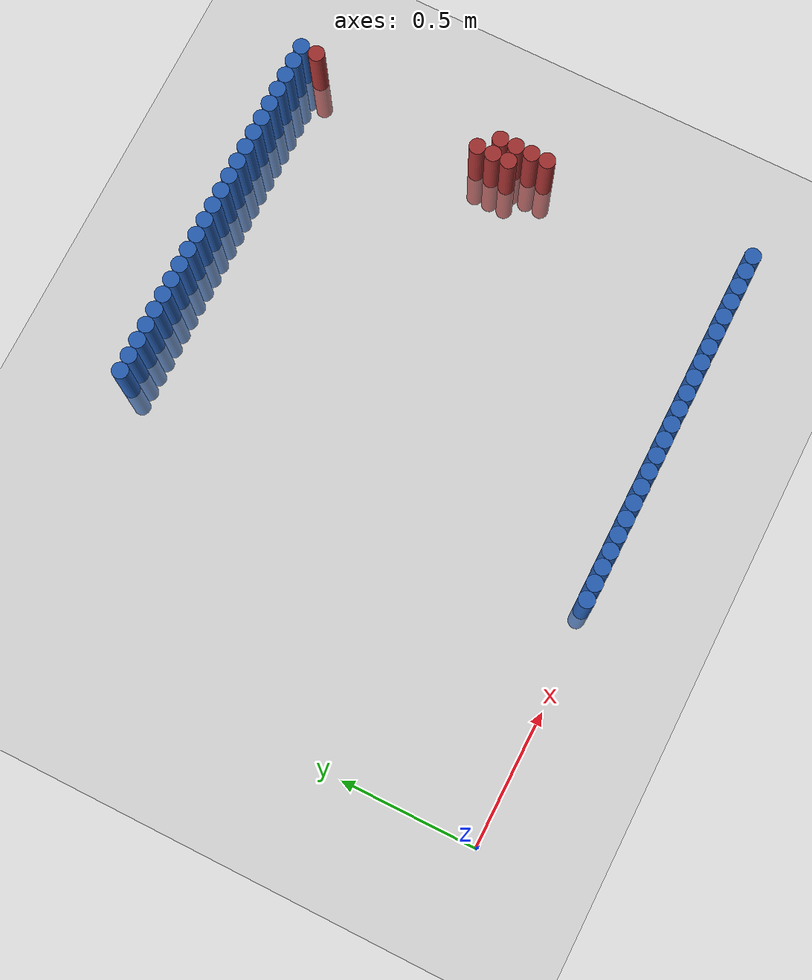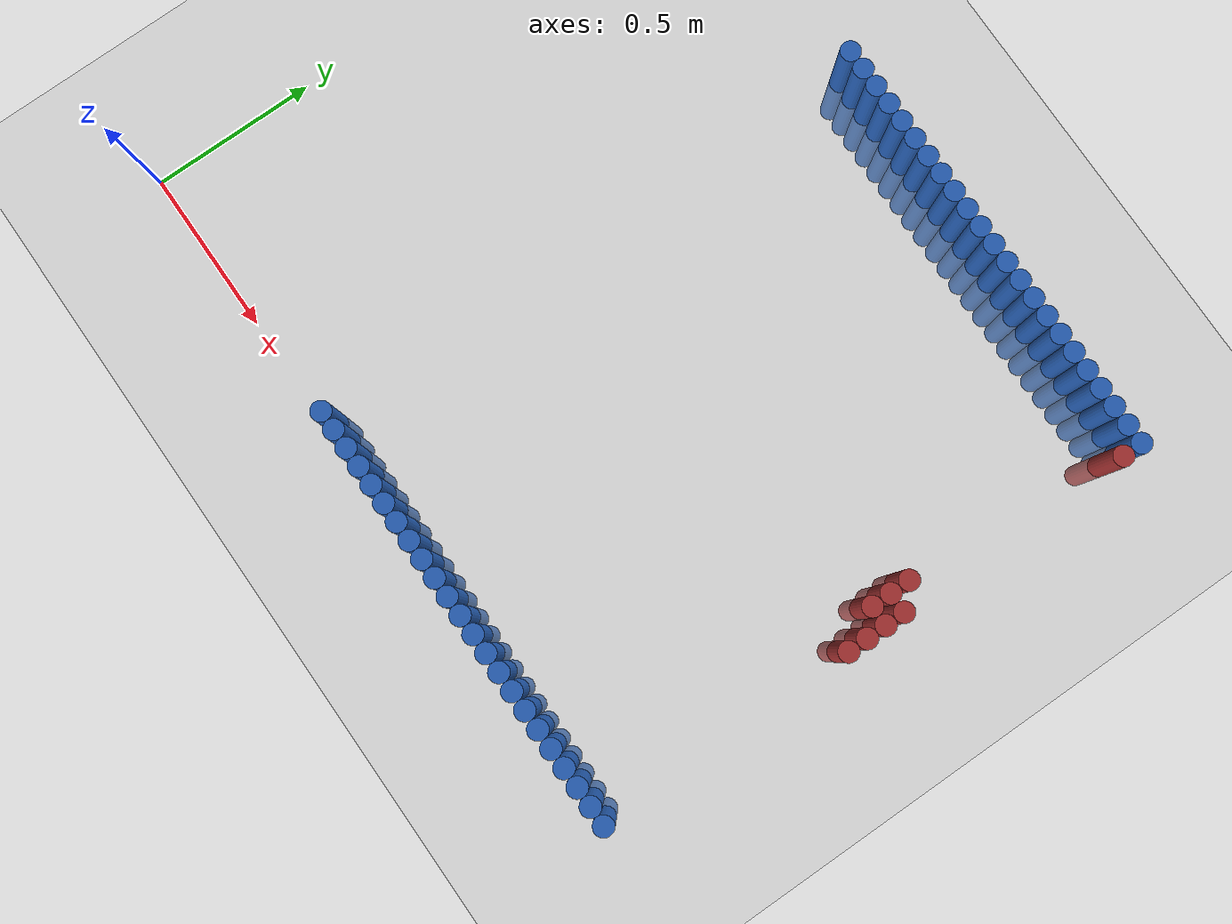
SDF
<sdf version="1.6">
 <world name="default">
  <model name="ground_plane">
   <static>1</static>
   <link name="link">
    <collision name="collision">
     <geometry><plane><normal>0 0 1</normal><size>100 100</size></plane></geometry>
     <surface><friction><ode><mu>100</mu><mu2>50</mu2></ode></friction></surface>
    </collision>
    <visual name="visual">
     <cast_shadows>0</cast_shadows>
     <geometry><plane><normal>0 0 1</normal><size>100 100</size></plane></geometry>
     <material>
      <script><uri>file://media/materials/scripts/gazebo.material</uri><name>Gazebo/Grey</name></script>
     </material>
    </visual>
   </link>
  </model>
  <model name="unit_cylinder_55">
   <static>1</static>
   <pose>0.870000 0.030000 0.000000 0.000000 0.000000 0.000000</pose>
   <link name="link">
    <inertial>
     <mass>1</mass>
     <inertia><ixx>0.145833</ixx><ixy>0</ixy><ixz>0</ixz><iyy>0.145833</iyy><iyz>0</iyz><izz>0.125</izz></inertia>
    </inertial>
    <collision name="collision">
     <geometry><cylinder><radius>0.030000</radius><length>0.5</length></cylinder></geometry>
    </collision>
    <visual name="visual">
     <geometry><cylinder><radius>0.030000</radius><length>0.5</length></cylinder></geometry>
     <material>
      <ambient>0.152000 0.379000 0.720000 1</ambient>
      <diffuse>0.152000 0.379000 0.720000 1</diffuse>
     </material>
     <material>
      <script><name>Gazebo/Grey</name><uri>file://media/materials/scripts/gazebo.material</uri></script>
     </material>
    </visual>
   </link>
  </model>
  <model name="unit_cylinder_56">
   <static>1</static>
   <pose>0.870000 1.770000 0.000000 0.000000 0.000000 0.000000</pose>
   <link name="link">
    <inertial>
     <mass>1</mass>
     <inertia><ixx>0.145833</ixx><ixy>0</ixy><ixz>0</ixz><iyy>0.145833</iyy><iyz>0</iyz><izz>0.125</izz></inertia>
    </inertial>
    <collision name="collision">
     <geometry><cylinder><radius>0.030000</radius><length>0.5</length></cylinder></geometry>
    </collision>
    <visual name="visual">
     <geometry><cylinder><radius>0.030000</radius><length>0.5</length></cylinder></geometry>
     <material>
      <ambient>0.152000 0.379000 0.720000 1</ambient>
      <diffuse>0.152000 0.379000 0.720000 1</diffuse>
     </material>
     <material>
      <script><name>Gazebo/Grey</name><uri>file://media/materials/scripts/gazebo.material</uri></script>
     </material>
    </visual>
   </link>
  </model>
  <model name="unit_cylinder_57">
   <static>1</static>
   <pose>0.930000 0.030000 0.000000 0.000000 0.000000 0.000000</pose>
   <link name="link">
    <inertial>
     <mass>1</mass>
     <inertia><ixx>0.145833</ixx><ixy>0</ixy><ixz>0</ixz><iyy>0.145833</iyy><iyz>0</iyz><izz>0.125</izz></inertia>
    </inertial>
    <collision name="collision">
     <geometry><cylinder><radius>0.030000</radius><length>0.5</length></cylinder></geometry>
    </collision>
    <visual name="visual">
     <geometry><cylinder><radius>0.030000</radius><length>0.5</length></cylinder></geometry>
     <material>
      <ambient>0.152000 0.379000 0.720000 1</ambient>
      <diffuse>0.152000 0.379000 0.720000 1</diffuse>
     </material>
     <material>
      <script><name>Gazebo/Grey</name><uri>file://media/materials/scripts/gazebo.material</uri></script>
     </material>
    </visual>
   </link>
  </model>
  <model name="unit_cylinder_58">
   <static>1</static>
   <pose>0.930000 1.770000 0.000000 0.000000 0.000000 0.000000</pose>
   <link name="link">
    <inertial>
     <mass>1</mass>
     <inertia><ixx>0.145833</ixx><ixy>0</ixy><ixz>0</ixz><iyy>0.145833</iyy><iyz>0</iyz><izz>0.125</izz></inertia>
    </inertial>
    <collision name="collision">
     <geometry><cylinder><radius>0.030000</radius><length>0.5</length></cylinder></geometry>
    </collision>
    <visual name="visual">
     <geometry><cylinder><radius>0.030000</radius><length>0.5</length></cylinder></geometry>
     <material>
      <ambient>0.152000 0.379000 0.720000 1</ambient>
      <diffuse>0.152000 0.379000 0.720000 1</diffuse>
     </material>
     <material>
      <script><name>Gazebo/Grey</name><uri>file://media/materials/scripts/gazebo.material</uri></script>
     </material>
    </visual>
   </link>
  </model>
  <model name="unit_cylinder_59">
   <static>1</static>
   <pose>0.990000 0.030000 0.000000 0.000000 0.000000 0.000000</pose>
   <link name="link">
    <inertial>
     <mass>1</mass>
     <inertia><ixx>0.145833</ixx><ixy>0</ixy><ixz>0</ixz><iyy>0.145833</iyy><iyz>0</iyz><izz>0.125</izz></inertia>
    </inertial>
    <collision name="collision">
     <geometry><cylinder><radius>0.030000</radius><length>0.5</length></cylinder></geometry>
    </collision>
    <visual name="visual">
     <geometry><cylinder><radius>0.030000</radius><length>0.5</length></cylinder></geometry>
     <material>
      <ambient>0.152000 0.379000 0.720000 1</ambient>
      <diffuse>0.152000 0.379000 0.720000 1</diffuse>
     </material>
     <material>
      <script><name>Gazebo/Grey</name><uri>file://media/materials/scripts/gazebo.material</uri></script>
     </material>
    </visual>
   </link>
  </model>
  <model name="unit_cylinder_60">
   <static>1</static>
   <pose>0.990000 1.770000 0.000000 0.000000 0.000000 0.000000</pose>
   <link name="link">
    <inertial>
     <mass>1</mass>
     <inertia><ixx>0.145833</ixx><ixy>0</ixy><ixz>0</ixz><iyy>0.145833</iyy><iyz>0</iyz><izz>0.125</izz></inertia>
    </inertial>
    <collision name="collision">
     <geometry><cylinder><radius>0.030000</radius><length>0.5</length></cylinder></geometry>
    </collision>
    <visual name="visual">
     <geometry><cylinder><radius>0.030000</radius><length>0.5</length></cylinder></geometry>
     <material>
      <ambient>0.152000 0.379000 0.720000 1</ambient>
      <diffuse>0.152000 0.379000 0.720000 1</diffuse>
     </material>
     <material>
      <script><name>Gazebo/Grey</name><uri>file://media/materials/scripts/gazebo.material</uri></script>
     </material>
    </visual>
   </link>
  </model>
  <model name="unit_cylinder_61">
   <static>1</static>
   <pose>1.050000 0.030000 0.000000 0.000000 0.000000 0.000000</pose>
   <link name="link">
    <inertial>
     <mass>1</mass>
     <inertia><ixx>0.145833</ixx><ixy>0</ixy><ixz>0</ixz><iyy>0.145833</iyy><iyz>0</iyz><izz>0.125</izz></inertia>
    </inertial>
    <collision name="collision">
     <geometry><cylinder><radius>0.030000</radius><length>0.5</length></cylinder></geometry>
    </collision>
    <visual name="visual">
     <geometry><cylinder><radius>0.030000</radius><length>0.5</length></cylinder></geometry>
     <material>
      <ambient>0.152000 0.379000 0.720000 1</ambient>
      <diffuse>0.152000 0.379000 0.720000 1</diffuse>
     </material>
     <material>
      <script><name>Gazebo/Grey</name><uri>file://media/materials/scripts/gazebo.material</uri></script>
     </material>
    </visual>
   </link>
  </model>
  <model name="unit_cylinder_62">
   <static>1</static>
   <pose>1.050000 1.770000 0.000000 0.000000 0.000000 0.000000</pose>
   <link name="link">
    <inertial>
     <mass>1</mass>
     <inertia><ixx>0.145833</ixx><ixy>0</ixy><ixz>0</ixz><iyy>0.145833</iyy><iyz>0</iyz><izz>0.125</izz></inertia>
    </inertial>
    <collision name="collision">
     <geometry><cylinder><radius>0.030000</radius><length>0.5</length></cylinder></geometry>
    </collision>
    <visual name="visual">
     <geometry><cylinder><radius>0.030000</radius><length>0.5</length></cylinder></geometry>
     <material>
      <ambient>0.152000 0.379000 0.720000 1</ambient>
      <diffuse>0.152000 0.379000 0.720000 1</diffuse>
     </material>
     <material>
      <script><name>Gazebo/Grey</name><uri>file://media/materials/scripts/gazebo.material</uri></script>
     </material>
    </visual>
   </link>
  </model>
  <model name="unit_cylinder_63">
   <static>1</static>
   <pose>1.110000 0.030000 0.000000 0.000000 0.000000 0.000000</pose>
   <link name="link">
    <inertial>
     <mass>1</mass>
     <inertia><ixx>0.145833</ixx><ixy>0</ixy><ixz>0</ixz><iyy>0.145833</iyy><iyz>0</iyz><izz>0.125</izz></inertia>
    </inertial>
    <collision name="collision">
     <geometry><cylinder><radius>0.030000</radius><length>0.5</length></cylinder></geometry>
    </collision>
    <visual name="visual">
     <geometry><cylinder><radius>0.030000</radius><length>0.5</length></cylinder></geometry>
     <material>
      <ambient>0.152000 0.379000 0.720000 1</ambient>
      <diffuse>0.152000 0.379000 0.720000 1</diffuse>
     </material>
     <material>
      <script><name>Gazebo/Grey</name><uri>file://media/materials/scripts/gazebo.material</uri></script>
     </material>
    </visual>
   </link>
  </model>
  <model name="unit_cylinder_64">
   <static>1</static>
   <pose>1.110000 1.770000 0.000000 0.000000 0.000000 0.000000</pose>
   <link name="link">
    <inertial>
     <mass>1</mass>
     <inertia><ixx>0.145833</ixx><ixy>0</ixy><ixz>0</ixz><iyy>0.145833</iyy><iyz>0</iyz><izz>0.125</izz></inertia>
    </inertial>
    <collision name="collision">
     <geometry><cylinder><radius>0.030000</radius><length>0.5</length></cylinder></geometry>
    </collision>
    <visual name="visual">
     <geometry><cylinder><radius>0.030000</radius><length>0.5</length></cylinder></geometry>
     <material>
      <ambient>0.152000 0.379000 0.720000 1</ambient>
      <diffuse>0.152000 0.379000 0.720000 1</diffuse>
     </material>
     <material>
      <script><name>Gazebo/Grey</name><uri>file://media/materials/scripts/gazebo.material</uri></script>
     </material>
    </visual>
   </link>
  </model>
  <model name="unit_cylinder_65">
   <static>1</static>
   <pose>1.170000 0.030000 0.000000 0.000000 0.000000 0.000000</pose>
   <link name="link">
    <inertial>
     <mass>1</mass>
     <inertia><ixx>0.145833</ixx><ixy>0</ixy><ixz>0</ixz><iyy>0.145833</iyy><iyz>0</iyz><izz>0.125</izz></inertia>
    </inertial>
    <collision name="collision">
     <geometry><cylinder><radius>0.030000</radius><length>0.5</length></cylinder></geometry>
    </collision>
    <visual name="visual">
     <geometry><cylinder><radius>0.030000</radius><length>0.5</length></cylinder></geometry>
     <material>
      <ambient>0.152000 0.379000 0.720000 1</ambient>
      <diffuse>0.152000 0.379000 0.720000 1</diffuse>
     </material>
     <material>
      <script><name>Gazebo/Grey</name><uri>file://media/materials/scripts/gazebo.material</uri></script>
     </material>
    </visual>
   </link>
  </model>
  <model name="unit_cylinder_66">
   <static>1</static>
   <pose>1.170000 1.770000 0.000000 0.000000 0.000000 0.000000</pose>
   <link name="link">
    <inertial>
     <mass>1</mass>
     <inertia><ixx>0.145833</ixx><ixy>0</ixy><ixz>0</ixz><iyy>0.145833</iyy><iyz>0</iyz><izz>0.125</izz></inertia>
    </inertial>
    <collision name="collision">
     <geometry><cylinder><radius>0.030000</radius><length>0.5</length></cylinder></geometry>
    </collision>
    <visual name="visual">
     <geometry><cylinder><radius>0.030000</radius><length>0.5</length></cylinder></geometry>
     <material>
      <ambient>0.152000 0.379000 0.720000 1</ambient>
      <diffuse>0.152000 0.379000 0.720000 1</diffuse>
     </material>
     <material>
      <script><name>Gazebo/Grey</name><uri>file://media/materials/scripts/gazebo.material</uri></script>
     </material>
    </visual>
   </link>
  </model>
  <model name="unit_cylinder_67">
   <static>1</static>
   <pose>1.230000 0.030000 0.000000 0.000000 0.000000 0.000000</pose>
   <link name="link">
    <inertial>
     <mass>1</mass>
     <inertia><ixx>0.145833</ixx><ixy>0</ixy><ixz>0</ixz><iyy>0.145833</iyy><iyz>0</iyz><izz>0.125</izz></inertia>
    </inertial>
    <collision name="collision">
     <geometry><cylinder><radius>0.030000</radius><length>0.5</length></cylinder></geometry>
    </collision>
    <visual name="visual">
     <geometry><cylinder><radius>0.030000</radius><length>0.5</length></cylinder></geometry>
     <material>
      <ambient>0.152000 0.379000 0.720000 1</ambient>
      <diffuse>0.152000 0.379000 0.720000 1</diffuse>
     </material>
     <material>
      <script><name>Gazebo/Grey</name><uri>file://media/materials/scripts/gazebo.material</uri></script>
     </material>
    </visual>
   </link>
  </model>
  <model name="unit_cylinder_68">
   <static>1</static>
   <pose>1.230000 1.770000 0.000000 0.000000 0.000000 0.000000</pose>
   <link name="link">
    <inertial>
     <mass>1</mass>
     <inertia><ixx>0.145833</ixx><ixy>0</ixy><ixz>0</ixz><iyy>0.145833</iyy><iyz>0</iyz><izz>0.125</izz></inertia>
    </inertial>
    <collision name="collision">
     <geometry><cylinder><radius>0.030000</radius><length>0.5</length></cylinder></geometry>
    </collision>
    <visual name="visual">
     <geometry><cylinder><radius>0.030000</radius><length>0.5</length></cylinder></geometry>
     <material>
      <ambient>0.152000 0.379000 0.720000 1</ambient>
      <diffuse>0.152000 0.379000 0.720000 1</diffuse>
     </material>
     <material>
      <script><name>Gazebo/Grey</name><uri>file://media/materials/scripts/gazebo.material</uri></script>
     </material>
    </visual>
   </link>
  </model>
  <model name="unit_cylinder_69">
   <static>1</static>
   <pose>1.290000 0.030000 0.000000 0.000000 0.000000 0.000000</pose>
   <link name="link">
    <inertial>
     <mass>1</mass>
     <inertia><ixx>0.145833</ixx><ixy>0</ixy><ixz>0</ixz><iyy>0.145833</iyy><iyz>0</iyz><izz>0.125</izz></inertia>
    </inertial>
    <collision name="collision">
     <geometry><cylinder><radius>0.030000</radius><length>0.5</length></cylinder></geometry>
    </collision>
    <visual name="visual">
     <geometry><cylinder><radius>0.030000</radius><length>0.5</length></cylinder></geometry>
     <material>
      <ambient>0.152000 0.379000 0.720000 1</ambient>
      <diffuse>0.152000 0.379000 0.720000 1</diffuse>
     </material>
     <material>
      <script><name>Gazebo/Grey</name><uri>file://media/materials/scripts/gazebo.material</uri></script>
     </material>
    </visual>
   </link>
  </model>
  <model name="unit_cylinder_70">
   <static>1</static>
   <pose>1.290000 1.770000 0.000000 0.000000 0.000000 0.000000</pose>
   <link name="link">
    <inertial>
     <mass>1</mass>
     <inertia><ixx>0.145833</ixx><ixy>0</ixy><ixz>0</ixz><iyy>0.145833</iyy><iyz>0</iyz><izz>0.125</izz></inertia>
    </inertial>
    <collision name="collision">
     <geometry><cylinder><radius>0.030000</radius><length>0.5</length></cylinder></geometry>
    </collision>
    <visual name="visual">
     <geometry><cylinder><radius>0.030000</radius><length>0.5</length></cylinder></geometry>
     <material>
      <ambient>0.152000 0.379000 0.720000 1</ambient>
      <diffuse>0.152000 0.379000 0.720000 1</diffuse>
     </material>
     <material>
      <script><name>Gazebo/Grey</name><uri>file://media/materials/scripts/gazebo.material</uri></script>
     </material>
    </visual>
   </link>
  </model>
  <model name="unit_cylinder_71">
   <static>1</static>
   <pose>1.350000 0.030000 0.000000 0.000000 0.000000 0.000000</pose>
   <link name="link">
    <inertial>
     <mass>1</mass>
     <inertia><ixx>0.145833</ixx><ixy>0</ixy><ixz>0</ixz><iyy>0.145833</iyy><iyz>0</iyz><izz>0.125</izz></inertia>
    </inertial>
    <collision name="collision">
     <geometry><cylinder><radius>0.030000</radius><length>0.5</length></cylinder></geometry>
    </collision>
    <visual name="visual">
     <geometry><cylinder><radius>0.030000</radius><length>0.5</length></cylinder></geometry>
     <material>
      <ambient>0.152000 0.379000 0.720000 1</ambient>
      <diffuse>0.152000 0.379000 0.720000 1</diffuse>
     </material>
     <material>
      <script><name>Gazebo/Grey</name><uri>file://media/materials/scripts/gazebo.material</uri></script>
     </material>
    </visual>
   </link>
  </model>
  <model name="unit_cylinder_72">
   <static>1</static>
   <pose>1.350000 1.770000 0.000000 0.000000 0.000000 0.000000</pose>
   <link name="link">
    <inertial>
     <mass>1</mass>
     <inertia><ixx>0.145833</ixx><ixy>0</ixy><ixz>0</ixz><iyy>0.145833</iyy><iyz>0</iyz><izz>0.125</izz></inertia>
    </inertial>
    <collision name="collision">
     <geometry><cylinder><radius>0.030000</radius><length>0.5</length></cylinder></geometry>
    </collision>
    <visual name="visual">
     <geometry><cylinder><radius>0.030000</radius><length>0.5</length></cylinder></geometry>
     <material>
      <ambient>0.152000 0.379000 0.720000 1</ambient>
      <diffuse>0.152000 0.379000 0.720000 1</diffuse>
     </material>
     <material>
      <script><name>Gazebo/Grey</name><uri>file://media/materials/scripts/gazebo.material</uri></script>
     </material>
    </visual>
   </link>
  </model>
  <model name="unit_cylinder_73">
   <static>1</static>
   <pose>1.410000 0.030000 0.000000 0.000000 0.000000 0.000000</pose>
   <link name="link">
    <inertial>
     <mass>1</mass>
     <inertia><ixx>0.145833</ixx><ixy>0</ixy><ixz>0</ixz><iyy>0.145833</iyy><iyz>0</iyz><izz>0.125</izz></inertia>
    </inertial>
    <collision name="collision">
     <geometry><cylinder><radius>0.030000</radius><length>0.5</length></cylinder></geometry>
    </collision>
    <visual name="visual">
     <geometry><cylinder><radius>0.030000</radius><length>0.5</length></cylinder></geometry>
     <material>
      <ambient>0.152000 0.379000 0.720000 1</ambient>
      <diffuse>0.152000 0.379000 0.720000 1</diffuse>
     </material>
     <material>
      <script><name>Gazebo/Grey</name><uri>file://media/materials/scripts/gazebo.material</uri></script>
     </material>
    </visual>
   </link>
  </model>
  <model name="unit_cylinder_74">
   <static>1</static>
   <pose>1.410000 1.770000 0.000000 0.000000 0.000000 0.000000</pose>
   <link name="link">
    <inertial>
     <mass>1</mass>
     <inertia><ixx>0.145833</ixx><ixy>0</ixy><ixz>0</ixz><iyy>0.145833</iyy><iyz>0</iyz><izz>0.125</izz></inertia>
    </inertial>
    <collision name="collision">
     <geometry><cylinder><radius>0.030000</radius><length>0.5</length></cylinder></geometry>
    </collision>
    <visual name="visual">
     <geometry><cylinder><radius>0.030000</radius><length>0.5</length></cylinder></geometry>
     <material>
      <ambient>0.152000 0.379000 0.720000 1</ambient>
      <diffuse>0.152000 0.379000 0.720000 1</diffuse>
     </material>
     <material>
      <script><name>Gazebo/Grey</name><uri>file://media/materials/scripts/gazebo.material</uri></script>
     </material>
    </visual>
   </link>
  </model>
  <model name="unit_cylinder_75">
   <static>1</static>
   <pose>1.470000 0.030000 0.000000 0.000000 0.000000 0.000000</pose>
   <link name="link">
    <inertial>
     <mass>1</mass>
     <inertia><ixx>0.145833</ixx><ixy>0</ixy><ixz>0</ixz><iyy>0.145833</iyy><iyz>0</iyz><izz>0.125</izz></inertia>
    </inertial>
    <collision name="collision">
     <geometry><cylinder><radius>0.030000</radius><length>0.5</length></cylinder></geometry>
    </collision>
    <visual name="visual">
     <geometry><cylinder><radius>0.030000</radius><length>0.5</length></cylinder></geometry>
     <material>
      <ambient>0.152000 0.379000 0.720000 1</ambient>
      <diffuse>0.152000 0.379000 0.720000 1</diffuse>
     </material>
     <material>
      <script><name>Gazebo/Grey</name><uri>file://media/materials/scripts/gazebo.material</uri></script>
     </material>
    </visual>
   </link>
  </model>
  <model name="unit_cylinder_76">
   <static>1</static>
   <pose>1.470000 1.770000 0.000000 0.000000 0.000000 0.000000</pose>
   <link name="link">
    <inertial>
     <mass>1</mass>
     <inertia><ixx>0.145833</ixx><ixy>0</ixy><ixz>0</ixz><iyy>0.145833</iyy><iyz>0</iyz><izz>0.125</izz></inertia>
    </inertial>
    <collision name="collision">
     <geometry><cylinder><radius>0.030000</radius><length>0.5</length></cylinder></geometry>
    </collision>
    <visual name="visual">
     <geometry><cylinder><radius>0.030000</radius><length>0.5</length></cylinder></geometry>
     <material>
      <ambient>0.152000 0.379000 0.720000 1</ambient>
      <diffuse>0.152000 0.379000 0.720000 1</diffuse>
     </material>
     <material>
      <script><name>Gazebo/Grey</name><uri>file://media/materials/scripts/gazebo.material</uri></script>
     </material>
    </visual>
   </link>
  </model>
  <model name="unit_cylinder_77">
   <static>1</static>
   <pose>1.530000 0.030000 0.000000 0.000000 0.000000 0.000000</pose>
   <link name="link">
    <inertial>
     <mass>1</mass>
     <inertia><ixx>0.145833</ixx><ixy>0</ixy><ixz>0</ixz><iyy>0.145833</iyy><iyz>0</iyz><izz>0.125</izz></inertia>
    </inertial>
    <collision name="collision">
     <geometry><cylinder><radius>0.030000</radius><length>0.5</length></cylinder></geometry>
    </collision>
    <visual name="visual">
     <geometry><cylinder><radius>0.030000</radius><length>0.5</length></cylinder></geometry>
     <material>
      <ambient>0.152000 0.379000 0.720000 1</ambient>
      <diffuse>0.152000 0.379000 0.720000 1</diffuse>
     </material>
     <material>
      <script><name>Gazebo/Grey</name><uri>file://media/materials/scripts/gazebo.material</uri></script>
     </material>
    </visual>
   </link>
  </model>
  <model name="unit_cylinder_78">
   <static>1</static>
   <pose>1.530000 1.770000 0.000000 0.000000 0.000000 0.000000</pose>
   <link name="link">
    <inertial>
     <mass>1</mass>
     <inertia><ixx>0.145833</ixx><ixy>0</ixy><ixz>0</ixz><iyy>0.145833</iyy><iyz>0</iyz><izz>0.125</izz></inertia>
    </inertial>
    <collision name="collision">
     <geometry><cylinder><radius>0.030000</radius><length>0.5</length></cylinder></geometry>
    </collision>
    <visual name="visual">
     <geometry><cylinder><radius>0.030000</radius><length>0.5</length></cylinder></geometry>
     <material>
      <ambient>0.152000 0.379000 0.720000 1</ambient>
      <diffuse>0.152000 0.379000 0.720000 1</diffuse>
     </material>
     <material>
      <script><name>Gazebo/Grey</name><uri>file://media/materials/scripts/gazebo.material</uri></script>
     </material>
    </visual>
   </link>
  </model>
  <model name="unit_cylinder_79">
   <static>1</static>
   <pose>1.590000 0.030000 0.000000 0.000000 0.000000 0.000000</pose>
   <link name="link">
    <inertial>
     <mass>1</mass>
     <inertia><ixx>0.145833</ixx><ixy>0</ixy><ixz>0</ixz><iyy>0.145833</iyy><iyz>0</iyz><izz>0.125</izz></inertia>
    </inertial>
    <collision name="collision">
     <geometry><cylinder><radius>0.030000</radius><length>0.5</length></cylinder></geometry>
    </collision>
    <visual name="visual">
     <geometry><cylinder><radius>0.030000</radius><length>0.5</length></cylinder></geometry>
     <material>
      <ambient>0.152000 0.379000 0.720000 1</ambient>
      <diffuse>0.152000 0.379000 0.720000 1</diffuse>
     </material>
     <material>
      <script><name>Gazebo/Grey</name><uri>file://media/materials/scripts/gazebo.material</uri></script>
     </material>
    </visual>
   </link>
  </model>
  <model name="unit_cylinder_80">
   <static>1</static>
   <pose>1.590000 1.770000 0.000000 0.000000 0.000000 0.000000</pose>
   <link name="link">
    <inertial>
     <mass>1</mass>
     <inertia><ixx>0.145833</ixx><ixy>0</ixy><ixz>0</ixz><iyy>0.145833</iyy><iyz>0</iyz><izz>0.125</izz></inertia>
    </inertial>
    <collision name="collision">
     <geometry><cylinder><radius>0.030000</radius><length>0.5</length></cylinder></geometry>
    </collision>
    <visual name="visual">
     <geometry><cylinder><radius>0.030000</radius><length>0.5</length></cylinder></geometry>
     <material>
      <ambient>0.152000 0.379000 0.720000 1</ambient>
      <diffuse>0.152000 0.379000 0.720000 1</diffuse>
     </material>
     <material>
      <script><name>Gazebo/Grey</name><uri>file://media/materials/scripts/gazebo.material</uri></script>
     </material>
    </visual>
   </link>
  </model>
  <model name="unit_cylinder_81">
   <static>1</static>
   <pose>1.650000 0.030000 0.000000 0.000000 0.000000 0.000000</pose>
   <link name="link">
    <inertial>
     <mass>1</mass>
     <inertia><ixx>0.145833</ixx><ixy>0</ixy><ixz>0</ixz><iyy>0.145833</iyy><iyz>0</iyz><izz>0.125</izz></inertia>
    </inertial>
    <collision name="collision">
     <geometry><cylinder><radius>0.030000</radius><length>0.5</length></cylinder></geometry>
    </collision>
    <visual name="visual">
     <geometry><cylinder><radius>0.030000</radius><length>0.5</length></cylinder></geometry>
     <material>
      <ambient>0.152000 0.379000 0.720000 1</ambient>
      <diffuse>0.152000 0.379000 0.720000 1</diffuse>
     </material>
     <material>
      <script><name>Gazebo/Grey</name><uri>file://media/materials/scripts/gazebo.material</uri></script>
     </material>
    </visual>
   </link>
  </model>
  <model name="unit_cylinder_82">
   <static>1</static>
   <pose>1.650000 1.770000 0.000000 0.000000 0.000000 0.000000</pose>
   <link name="link">
    <inertial>
     <mass>1</mass>
     <inertia><ixx>0.145833</ixx><ixy>0</ixy><ixz>0</ixz><iyy>0.145833</iyy><iyz>0</iyz><izz>0.125</izz></inertia>
    </inertial>
    <collision name="collision">
     <geometry><cylinder><radius>0.030000</radius><length>0.5</length></cylinder></geometry>
    </collision>
    <visual name="visual">
     <geometry><cylinder><radius>0.030000</radius><length>0.5</length></cylinder></geometry>
     <material>
      <ambient>0.152000 0.379000 0.720000 1</ambient>
      <diffuse>0.152000 0.379000 0.720000 1</diffuse>
     </material>
     <material>
      <script><name>Gazebo/Grey</name><uri>file://media/materials/scripts/gazebo.material</uri></script>
     </material>
    </visual>
   </link>
  </model>
  <model name="unit_cylinder_83">
   <static>1</static>
   <pose>1.710000 0.030000 0.000000 0.000000 0.000000 0.000000</pose>
   <link name="link">
    <inertial>
     <mass>1</mass>
     <inertia><ixx>0.145833</ixx><ixy>0</ixy><ixz>0</ixz><iyy>0.145833</iyy><iyz>0</iyz><izz>0.125</izz></inertia>
    </inertial>
    <collision name="collision">
     <geometry><cylinder><radius>0.030000</radius><length>0.5</length></cylinder></geometry>
    </collision>
    <visual name="visual">
     <geometry><cylinder><radius>0.030000</radius><length>0.5</length></cylinder></geometry>
     <material>
      <ambient>0.152000 0.379000 0.720000 1</ambient>
      <diffuse>0.152000 0.379000 0.720000 1</diffuse>
     </material>
     <material>
      <script><name>Gazebo/Grey</name><uri>file://media/materials/scripts/gazebo.material</uri></script>
     </material>
    </visual>
   </link>
  </model>
  <model name="unit_cylinder_84">
   <static>1</static>
   <pose>1.710000 1.770000 0.000000 0.000000 0.000000 0.000000</pose>
   <link name="link">
    <inertial>
     <mass>1</mass>
     <inertia><ixx>0.145833</ixx><ixy>0</ixy><ixz>0</ixz><iyy>0.145833</iyy><iyz>0</iyz><izz>0.125</izz></inertia>
    </inertial>
    <collision name="collision">
     <geometry><cylinder><radius>0.030000</radius><length>0.5</length></cylinder></geometry>
    </collision>
    <visual name="visual">
     <geometry><cylinder><radius>0.030000</radius><length>0.5</length></cylinder></geometry>
     <material>
      <ambient>0.152000 0.379000 0.720000 1</ambient>
      <diffuse>0.152000 0.379000 0.720000 1</diffuse>
     </material>
     <material>
      <script><name>Gazebo/Grey</name><uri>file://media/materials/scripts/gazebo.material</uri></script>
     </material>
    </visual>
   </link>
  </model>
  <model name="unit_cylinder_85">
   <static>1</static>
   <pose>1.770000 0.030000 0.000000 0.000000 0.000000 0.000000</pose>
   <link name="link">
    <inertial>
     <mass>1</mass>
     <inertia><ixx>0.145833</ixx><ixy>0</ixy><ixz>0</ixz><iyy>0.145833</iyy><iyz>0</iyz><izz>0.125</izz></inertia>
    </inertial>
    <collision name="collision">
     <geometry><cylinder><radius>0.030000</radius><length>0.5</length></cylinder></geometry>
    </collision>
    <visual name="visual">
     <geometry><cylinder><radius>0.030000</radius><length>0.5</length></cylinder></geometry>
     <material>
      <ambient>0.152000 0.379000 0.720000 1</ambient>
      <diffuse>0.152000 0.379000 0.720000 1</diffuse>
     </material>
     <material>
      <script><name>Gazebo/Grey</name><uri>file://media/materials/scripts/gazebo.material</uri></script>
     </material>
    </visual>
   </link>
  </model>
  <model name="unit_cylinder_86">
   <static>1</static>
   <pose>1.770000 1.770000 0.000000 0.000000 0.000000 0.000000</pose>
   <link name="link">
    <inertial>
     <mass>1</mass>
     <inertia><ixx>0.145833</ixx><ixy>0</ixy><ixz>0</ixz><iyy>0.145833</iyy><iyz>0</iyz><izz>0.125</izz></inertia>
    </inertial>
    <collision name="collision">
     <geometry><cylinder><radius>0.030000</radius><length>0.5</length></cylinder></geometry>
    </collision>
    <visual name="visual">
     <geometry><cylinder><radius>0.030000</radius><length>0.5</length></cylinder></geometry>
     <material>
      <ambient>0.152000 0.379000 0.720000 1</ambient>
      <diffuse>0.152000 0.379000 0.720000 1</diffuse>
     </material>
     <material>
      <script><name>Gazebo/Grey</name><uri>file://media/materials/scripts/gazebo.material</uri></script>
     </material>
    </visual>
   </link>
  </model>
  <model name="unit_cylinder_87">
   <static>1</static>
   <pose>1.830000 0.030000 0.000000 0.000000 0.000000 0.000000</pose>
   <link name="link">
    <inertial>
     <mass>1</mass>
     <inertia><ixx>0.145833</ixx><ixy>0</ixy><ixz>0</ixz><iyy>0.145833</iyy><iyz>0</iyz><izz>0.125</izz></inertia>
    </inertial>
    <collision name="collision">
     <geometry><cylinder><radius>0.030000</radius><length>0.5</length></cylinder></geometry>
    </collision>
    <visual name="visual">
     <geometry><cylinder><radius>0.030000</radius><length>0.5</length></cylinder></geometry>
     <material>
      <ambient>0.152000 0.379000 0.720000 1</ambient>
      <diffuse>0.152000 0.379000 0.720000 1</diffuse>
     </material>
     <material>
      <script><name>Gazebo/Grey</name><uri>file://media/materials/scripts/gazebo.material</uri></script>
     </material>
    </visual>
   </link>
  </model>
  <model name="unit_cylinder_88">
   <static>1</static>
   <pose>1.830000 1.770000 0.000000 0.000000 0.000000 0.000000</pose>
   <link name="link">
    <inertial>
     <mass>1</mass>
     <inertia><ixx>0.145833</ixx><ixy>0</ixy><ixz>0</ixz><iyy>0.145833</iyy><iyz>0</iyz><izz>0.125</izz></inertia>
    </inertial>
    <collision name="collision">
     <geometry><cylinder><radius>0.030000</radius><length>0.5</length></cylinder></geometry>
    </collision>
    <visual name="visual">
     <geometry><cylinder><radius>0.030000</radius><length>0.5</length></cylinder></geometry>
     <material>
      <ambient>0.152000 0.379000 0.720000 1</ambient>
      <diffuse>0.152000 0.379000 0.720000 1</diffuse>
     </material>
     <material>
      <script><name>Gazebo/Grey</name><uri>file://media/materials/scripts/gazebo.material</uri></script>
     </material>
    </visual>
   </link>
  </model>
  <model name="unit_cylinder_89">
   <static>1</static>
   <pose>1.890000 0.030000 0.000000 0.000000 0.000000 0.000000</pose>
   <link name="link">
    <inertial>
     <mass>1</mass>
     <inertia><ixx>0.145833</ixx><ixy>0</ixy><ixz>0</ixz><iyy>0.145833</iyy><iyz>0</iyz><izz>0.125</izz></inertia>
    </inertial>
    <collision name="collision">
     <geometry><cylinder><radius>0.030000</radius><length>0.5</length></cylinder></geometry>
    </collision>
    <visual name="visual">
     <geometry><cylinder><radius>0.030000</radius><length>0.5</length></cylinder></geometry>
     <material>
      <ambient>0.152000 0.379000 0.720000 1</ambient>
      <diffuse>0.152000 0.379000 0.720000 1</diffuse>
     </material>
     <material>
      <script><name>Gazebo/Grey</name><uri>file://media/materials/scripts/gazebo.material</uri></script>
     </material>
    </visual>
   </link>
  </model>
  <model name="unit_cylinder_90">
   <static>1</static>
   <pose>1.890000 1.770000 0.000000 0.000000 0.000000 0.000000</pose>
   <link name="link">
    <inertial>
     <mass>1</mass>
     <inertia><ixx>0.145833</ixx><ixy>0</ixy><ixz>0</ixz><iyy>0.145833</iyy><iyz>0</iyz><izz>0.125</izz></inertia>
    </inertial>
    <collision name="collision">
     <geometry><cylinder><radius>0.030000</radius><length>0.5</length></cylinder></geometry>
    </collision>
    <visual name="visual">
     <geometry><cylinder><radius>0.030000</radius><length>0.5</length></cylinder></geometry>
     <material>
      <ambient>0.152000 0.379000 0.720000 1</ambient>
      <diffuse>0.152000 0.379000 0.720000 1</diffuse>
     </material>
     <material>
      <script><name>Gazebo/Grey</name><uri>file://media/materials/scripts/gazebo.material</uri></script>
     </material>
    </visual>
   </link>
  </model>
  <model name="unit_cylinder_91">
   <static>1</static>
   <pose>1.950000 0.030000 0.000000 0.000000 0.000000 0.000000</pose>
   <link name="link">
    <inertial>
     <mass>1</mass>
     <inertia><ixx>0.145833</ixx><ixy>0</ixy><ixz>0</ixz><iyy>0.145833</iyy><iyz>0</iyz><izz>0.125</izz></inertia>
    </inertial>
    <collision name="collision">
     <geometry><cylinder><radius>0.030000</radius><length>0.5</length></cylinder></geometry>
    </collision>
    <visual name="visual">
     <geometry><cylinder><radius>0.030000</radius><length>0.5</length></cylinder></geometry>
     <material>
      <ambient>0.152000 0.379000 0.720000 1</ambient>
      <diffuse>0.152000 0.379000 0.720000 1</diffuse>
     </material>
     <material>
      <script><name>Gazebo/Grey</name><uri>file://media/materials/scripts/gazebo.material</uri></script>
     </material>
    </visual>
   </link>
  </model>
  <model name="unit_cylinder_92">
   <static>1</static>
   <pose>1.950000 1.770000 0.000000 0.000000 0.000000 0.000000</pose>
   <link name="link">
    <inertial>
     <mass>1</mass>
     <inertia><ixx>0.145833</ixx><ixy>0</ixy><ixz>0</ixz><iyy>0.145833</iyy><iyz>0</iyz><izz>0.125</izz></inertia>
    </inertial>
    <collision name="collision">
     <geometry><cylinder><radius>0.030000</radius><length>0.5</length></cylinder></geometry>
    </collision>
    <visual name="visual">
     <geometry><cylinder><radius>0.030000</radius><length>0.5</length></cylinder></geometry>
     <material>
      <ambient>0.152000 0.379000 0.720000 1</ambient>
      <diffuse>0.152000 0.379000 0.720000 1</diffuse>
     </material>
     <material>
      <script><name>Gazebo/Grey</name><uri>file://media/materials/scripts/gazebo.material</uri></script>
     </material>
    </visual>
   </link>
  </model>
  <model name="unit_cylinder_93">
   <static>1</static>
   <pose>2.010000 0.030000 0.000000 0.000000 0.000000 0.000000</pose>
   <link name="link">
    <inertial>
     <mass>1</mass>
     <inertia><ixx>0.145833</ixx><ixy>0</ixy><ixz>0</ixz><iyy>0.145833</iyy><iyz>0</iyz><izz>0.125</izz></inertia>
    </inertial>
    <collision name="collision">
     <geometry><cylinder><radius>0.030000</radius><length>0.5</length></cylinder></geometry>
    </collision>
    <visual name="visual">
     <geometry><cylinder><radius>0.030000</radius><length>0.5</length></cylinder></geometry>
     <material>
      <ambient>0.152000 0.379000 0.720000 1</ambient>
      <diffuse>0.152000 0.379000 0.720000 1</diffuse>
     </material>
     <material>
      <script><name>Gazebo/Grey</name><uri>file://media/materials/scripts/gazebo.material</uri></script>
     </material>
    </visual>
   </link>
  </model>
  <model name="unit_cylinder_94">
   <static>1</static>
   <pose>2.010000 1.770000 0.000000 0.000000 0.000000 0.000000</pose>
   <link name="link">
    <inertial>
     <mass>1</mass>
     <inertia><ixx>0.145833</ixx><ixy>0</ixy><ixz>0</ixz><iyy>0.145833</iyy><iyz>0</iyz><izz>0.125</izz></inertia>
    </inertial>
    <collision name="collision">
     <geometry><cylinder><radius>0.030000</radius><length>0.5</length></cylinder></geometry>
    </collision>
    <visual name="visual">
     <geometry><cylinder><radius>0.030000</radius><length>0.5</length></cylinder></geometry>
     <material>
      <ambient>0.152000 0.379000 0.720000 1</ambient>
      <diffuse>0.152000 0.379000 0.720000 1</diffuse>
     </material>
     <material>
      <script><name>Gazebo/Grey</name><uri>file://media/materials/scripts/gazebo.material</uri></script>
     </material>
    </visual>
   </link>
  </model>
  <model name="unit_cylinder_95">
   <static>1</static>
   <pose>2.070000 1.770000 0.000000 0.000000 0.000000 0.000000</pose>
   <link name="link">
    <inertial>
     <mass>1</mass>
     <inertia><ixx>0.145833</ixx><ixy>0</ixy><ixz>0</ixz><iyy>0.145833</iyy><iyz>0</iyz><izz>0.125</izz></inertia>
    </inertial>
    <collision name="collision">
     <geometry><cylinder><radius>0.030000</radius><length>0.5</length></cylinder></geometry>
    </collision>
    <visual name="visual">
     <geometry><cylinder><radius>0.030000</radius><length>0.5</length></cylinder></geometry>
     <material>
      <ambient>0.152000 0.379000 0.720000 1</ambient>
      <diffuse>0.152000 0.379000 0.720000 1</diffuse>
     </material>
     <material>
      <script><name>Gazebo/Grey</name><uri>file://media/materials/scripts/gazebo.material</uri></script>
     </material>
    </visual>
   </link>
  </model>
  <model name="unit_cylinder_96">
   <static>1</static>
   <pose>2.130000 1.770000 0.000000 0.000000 0.000000 0.000000</pose>
   <link name="link">
    <inertial>
     <mass>1</mass>
     <inertia><ixx>0.145833</ixx><ixy>0</ixy><ixz>0</ixz><iyy>0.145833</iyy><iyz>0</iyz><izz>0.125</izz></inertia>
    </inertial>
    <collision name="collision">
     <geometry><cylinder><radius>0.030000</radius><length>0.5</length></cylinder></geometry>
    </collision>
    <visual name="visual">
     <geometry><cylinder><radius>0.030000</radius><length>0.5</length></cylinder></geometry>
     <material>
      <ambient>0.152000 0.379000 0.720000 1</ambient>
      <diffuse>0.152000 0.379000 0.720000 1</diffuse>
     </material>
     <material>
      <script><name>Gazebo/Grey</name><uri>file://media/materials/scripts/gazebo.material</uri></script>
     </material>
    </visual>
   </link>
  </model>
  <model name="unit_cylinder_97">
   <static>1</static>
   <pose>2.190000 1.770000 0.000000 0.000000 0.000000 0.000000</pose>
   <link name="link">
    <inertial>
     <mass>1</mass>
     <inertia><ixx>0.145833</ixx><ixy>0</ixy><ixz>0</ixz><iyy>0.145833</iyy><iyz>0</iyz><izz>0.125</izz></inertia>
    </inertial>
    <collision name="collision">
     <geometry><cylinder><radius>0.030000</radius><length>0.5</length></cylinder></geometry>
    </collision>
    <visual name="visual">
     <geometry><cylinder><radius>0.030000</radius><length>0.5</length></cylinder></geometry>
     <material>
      <ambient>0.152000 0.379000 0.720000 1</ambient>
      <diffuse>0.152000 0.379000 0.720000 1</diffuse>
     </material>
     <material>
      <script><name>Gazebo/Grey</name><uri>file://media/materials/scripts/gazebo.material</uri></script>
     </material>
    </visual>
   </link>
  </model>
  <model name="unit_cylinder_125">
   <static>1</static>
   <pose>2.190000 1.710000 0.000000 0.000000 0.000000 0.000000</pose>
   <link name="link">
    <inertial>
     <mass>1</mass>
     <inertia><ixx>0.145833</ixx><ixy>0</ixy><ixz>0</ixz><iyy>0.145833</iyy><iyz>0</iyz><izz>0.125</izz></inertia>
    </inertial>
    <collision name="collision">
     <geometry><cylinder><radius>0.030000</radius><length>0.5</length></cylinder></geometry>
    </collision>
    <visual name="visual">
     <geometry><cylinder><radius>0.030000</radius><length>0.5</length></cylinder></geometry>
     <material>
      <ambient>0.648000 0.192000 0.192000 1</ambient>
      <diffuse>0.648000 0.192000 0.192000 1</diffuse>
     </material>
     <material>
      <script><name>Gazebo/Grey</name><uri>file://media/materials/scripts/gazebo.material</uri></script>
     </material>
    </visual>
   </link>
  </model>
  <model name="unit_cylinder_189">
   <static>1</static>
   <pose>2.130000 1.050000 0.000000 0.000000 0.000000 0.000000</pose>
   <link name="link">
    <inertial>
     <mass>1</mass>
     <inertia><ixx>0.145833</ixx><ixy>0</ixy><ixz>0</ixz><iyy>0.145833</iyy><iyz>0</iyz><izz>0.125</izz></inertia>
    </inertial>
    <collision name="collision">
     <geometry><cylinder><radius>0.030000</radius><length>0.5</length></cylinder></geometry>
    </collision>
    <visual name="visual">
     <geometry><cylinder><radius>0.030000</radius><length>0.5</length></cylinder></geometry>
     <material>
      <ambient>0.648000 0.192000 0.192000 1</ambient>
      <diffuse>0.648000 0.192000 0.192000 1</diffuse>
     </material>
     <material>
      <script><name>Gazebo/Grey</name><uri>file://media/materials/scripts/gazebo.material</uri></script>
     </material>
    </visual>
   </link>
  </model>
  <model name="unit_cylinder_195">
   <static>1</static>
   <pose>2.130000 0.990000 0.000000 0.000000 0.000000 0.000000</pose>
   <link name="link">
    <inertial>
     <mass>1</mass>
     <inertia><ixx>0.145833</ixx><ixy>0</ixy><ixz>0</ixz><iyy>0.145833</iyy><iyz>0</iyz><izz>0.125</izz></inertia>
    </inertial>
    <collision name="collision">
     <geometry><cylinder><radius>0.030000</radius><length>0.5</length></cylinder></geometry>
    </collision>
    <visual name="visual">
     <geometry><cylinder><radius>0.030000</radius><length>0.5</length></cylinder></geometry>
     <material>
      <ambient>0.648000 0.192000 0.192000 1</ambient>
      <diffuse>0.648000 0.192000 0.192000 1</diffuse>
     </material>
     <material>
      <script><name>Gazebo/Grey</name><uri>file://media/materials/scripts/gazebo.material</uri></script>
     </material>
    </visual>
   </link>
  </model>
  <model name="unit_cylinder_196">
   <static>1</static>
   <pose>2.190000 0.990000 0.000000 0.000000 0.000000 0.000000</pose>
   <link name="link">
    <inertial>
     <mass>1</mass>
     <inertia><ixx>0.145833</ixx><ixy>0</ixy><ixz>0</ixz><iyy>0.145833</iyy><iyz>0</iyz><izz>0.125</izz></inertia>
    </inertial>
    <collision name="collision">
     <geometry><cylinder><radius>0.030000</radius><length>0.5</length></cylinder></geometry>
    </collision>
    <visual name="visual">
     <geometry><cylinder><radius>0.030000</radius><length>0.5</length></cylinder></geometry>
     <material>
      <ambient>0.648000 0.192000 0.192000 1</ambient>
      <diffuse>0.648000 0.192000 0.192000 1</diffuse>
     </material>
     <material>
      <script><name>Gazebo/Grey</name><uri>file://media/materials/scripts/gazebo.material</uri></script>
     </material>
    </visual>
   </link>
  </model>
  <model name="unit_cylinder_199">
   <static>1</static>
   <pose>2.130000 0.930000 0.000000 0.000000 0.000000 0.000000</pose>
   <link name="link">
    <inertial>
     <mass>1</mass>
     <inertia><ixx>0.145833</ixx><ixy>0</ixy><ixz>0</ixz><iyy>0.145833</iyy><iyz>0</iyz><izz>0.125</izz></inertia>
    </inertial>
    <collision name="collision">
     <geometry><cylinder><radius>0.030000</radius><length>0.5</length></cylinder></geometry>
    </collision>
    <visual name="visual">
     <geometry><cylinder><radius>0.030000</radius><length>0.5</length></cylinder></geometry>
     <material>
      <ambient>0.648000 0.192000 0.192000 1</ambient>
      <diffuse>0.648000 0.192000 0.192000 1</diffuse>
     </material>
     <material>
      <script><name>Gazebo/Grey</name><uri>file://media/materials/scripts/gazebo.material</uri></script>
     </material>
    </visual>
   </link>
  </model>
  <model name="unit_cylinder_200">
   <static>1</static>
   <pose>2.190000 0.930000 0.000000 0.000000 0.000000 0.000000</pose>
   <link name="link">
    <inertial>
     <mass>1</mass>
     <inertia><ixx>0.145833</ixx><ixy>0</ixy><ixz>0</ixz><iyy>0.145833</iyy><iyz>0</iyz><izz>0.125</izz></inertia>
    </inertial>
    <collision name="collision">
     <geometry><cylinder><radius>0.030000</radius><length>0.5</length></cylinder></geometry>
    </collision>
    <visual name="visual">
     <geometry><cylinder><radius>0.030000</radius><length>0.5</length></cylinder></geometry>
     <material>
      <ambient>0.648000 0.192000 0.192000 1</ambient>
      <diffuse>0.648000 0.192000 0.192000 1</diffuse>
     </material>
     <material>
      <script><name>Gazebo/Grey</name><uri>file://media/materials/scripts/gazebo.material</uri></script>
     </material>
    </visual>
   </link>
  </model>
  <model name="unit_cylinder_202">
   <static>1</static>
   <pose>2.190000 0.870000 0.000000 0.000000 0.000000 0.000000</pose>
   <link name="link">
    <inertial>
     <mass>1</mass>
     <inertia><ixx>0.145833</ixx><ixy>0</ixy><ixz>0</ixz><iyy>0.145833</iyy><iyz>0</iyz><izz>0.125</izz></inertia>
    </inertial>
    <collision name="collision">
     <geometry><cylinder><radius>0.030000</radius><length>0.5</length></cylinder></geometry>
    </collision>
    <visual name="visual">
     <geometry><cylinder><radius>0.030000</radius><length>0.5</length></cylinder></geometry>
     <material>
      <ambient>0.648000 0.192000 0.192000 1</ambient>
      <diffuse>0.648000 0.192000 0.192000 1</diffuse>
     </material>
     <material>
      <script><name>Gazebo/Grey</name><uri>file://media/materials/scripts/gazebo.material</uri></script>
     </material>
    </visual>
   </link>
  </model>
  <model name="unit_cylinder_204">
   <static>1</static>
   <pose>2.190000 0.810000 0.000000 0.000000 0.000000 0.000000</pose>
   <link name="link">
    <inertial>
     <mass>1</mass>
     <inertia><ixx>0.145833</ixx><ixy>0</ixy><ixz>0</ixz><iyy>0.145833</iyy><iyz>0</iyz><izz>0.125</izz></inertia>
    </inertial>
    <collision name="collision">
     <geometry><cylinder><radius>0.030000</radius><length>0.5</length></cylinder></geometry>
    </collision>
    <visual name="visual">
     <geometry><cylinder><radius>0.030000</radius><length>0.5</length></cylinder></geometry>
     <material>
      <ambient>0.648000 0.192000 0.192000 1</ambient>
      <diffuse>0.648000 0.192000 0.192000 1</diffuse>
     </material>
     <material>
      <script><name>Gazebo/Grey</name><uri>file://media/materials/scripts/gazebo.material</uri></script>
     </material>
    </visual>
   </link>
  </model>
  <model name="unit_cylinder_242">
   <static>1</static>
   <pose>2.070000 0.030000 0.000000 0.000000 0.000000 0.000000</pose>
   <link name="link">
    <inertial>
     <mass>1</mass>
     <inertia><ixx>0.145833</ixx><ixy>0</ixy><ixz>0</ixz><iyy>0.145833</iyy><iyz>0</iyz><izz>0.125</izz></inertia>
    </inertial>
    <collision name="collision">
     <geometry><cylinder><radius>0.030000</radius><length>0.5</length></cylinder></geometry>
    </collision>
    <visual name="visual">
     <geometry><cylinder><radius>0.030000</radius><length>0.5</length></cylinder></geometry>
     <material>
      <ambient>0.152000 0.379000 0.720000 1</ambient>
      <diffuse>0.152000 0.379000 0.720000 1</diffuse>
     </material>
     <material>
      <script><name>Gazebo/Grey</name><uri>file://media/materials/scripts/gazebo.material</uri></script>
     </material>
    </visual>
   </link>
  </model>
  <model name="unit_cylinder_243">
   <static>1</static>
   <pose>2.130000 0.030000 0.000000 0.000000 0.000000 0.000000</pose>
   <link name="link">
    <inertial>
     <mass>1</mass>
     <inertia><ixx>0.145833</ixx><ixy>0</ixy><ixz>0</ixz><iyy>0.145833</iyy><iyz>0</iyz><izz>0.125</izz></inertia>
    </inertial>
    <collision name="collision">
     <geometry><cylinder><radius>0.030000</radius><length>0.5</length></cylinder></geometry>
    </collision>
    <visual name="visual">
     <geometry><cylinder><radius>0.030000</radius><length>0.5</length></cylinder></geometry>
     <material>
      <ambient>0.152000 0.379000 0.720000 1</ambient>
      <diffuse>0.152000 0.379000 0.720000 1</diffuse>
     </material>
     <material>
      <script><name>Gazebo/Grey</name><uri>file://media/materials/scripts/gazebo.material</uri></script>
     </material>
    </visual>
   </link>
  </model>
  <model name="unit_cylinder_244">
   <static>1</static>
   <pose>2.190000 0.030000 0.000000 0.000000 0.000000 0.000000</pose>
   <link name="link">
    <inertial>
     <mass>1</mass>
     <inertia><ixx>0.145833</ixx><ixy>0</ixy><ixz>0</ixz><iyy>0.145833</iyy><iyz>0</iyz><izz>0.125</izz></inertia>
    </inertial>
    <collision name="collision">
     <geometry><cylinder><radius>0.030000</radius><length>0.5</length></cylinder></geometry>
    </collision>
    <visual name="visual">
     <geometry><cylinder><radius>0.030000</radius><length>0.5</length></cylinder></geometry>
     <material>
      <ambient>0.152000 0.379000 0.720000 1</ambient>
      <diffuse>0.152000 0.379000 0.720000 1</diffuse>
     </material>
     <material>
      <script><name>Gazebo/Grey</name><uri>file://media/materials/scripts/gazebo.material</uri></script>
     </material>
    </visual>
   </link>
  </model>
 </world>
</sdf>
